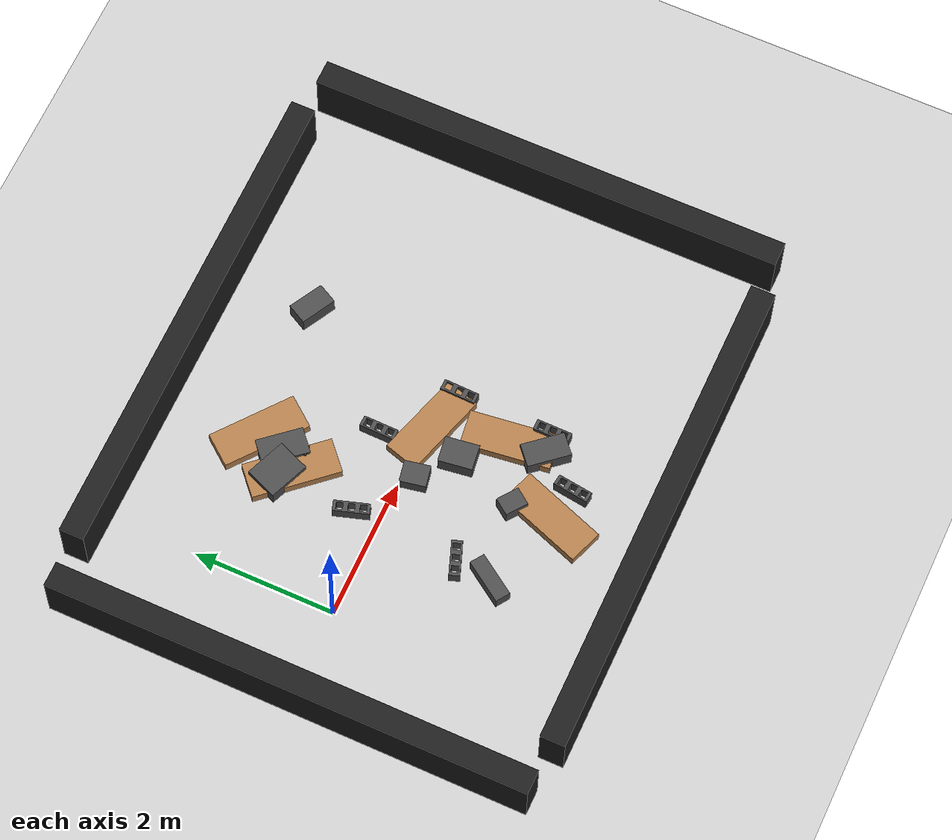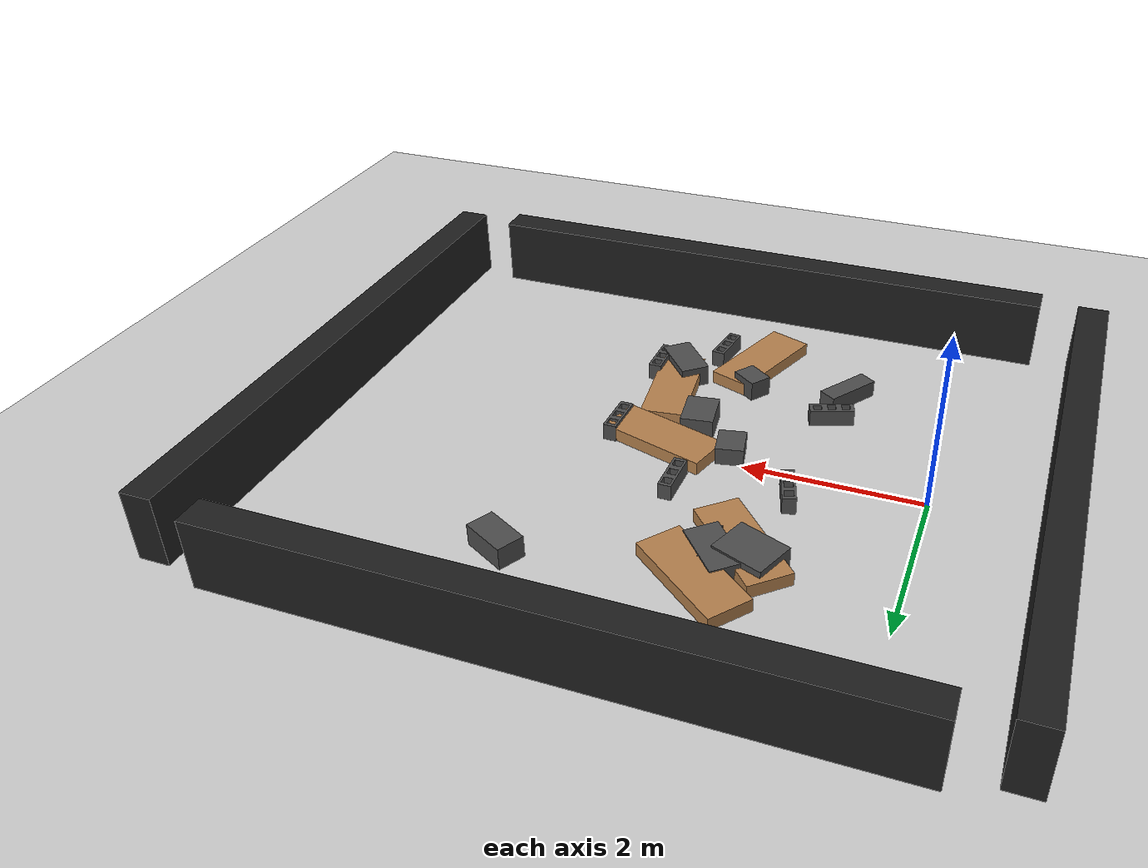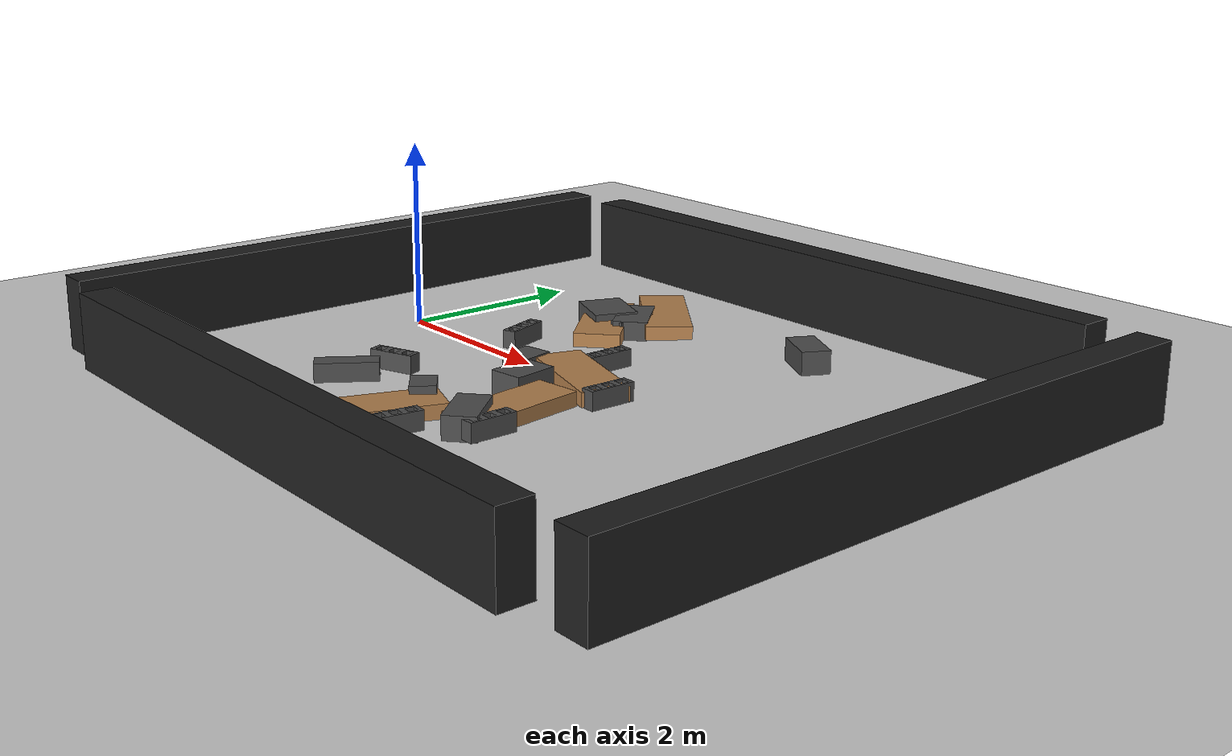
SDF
<sdf version="1.6">
 <world name="default">
  <plugin name="xbot2_clock" filename="libxbot2_gz_clock.so"/>
  <gravity>0 0 -9.81</gravity>
  <model name="ground_plane">
   <static>1</static>
   <link name="link">
    <collision name="collision">
     <geometry><plane><normal>0 0 1</normal><size>100 100</size></plane></geometry>
     <surface><friction><ode><mu>1</mu><mu2>1</mu2></ode></friction></surface>
    </collision>
    <visual name="visual">
     <cast_shadows>0</cast_shadows>
     <geometry><plane><normal>0 0 1</normal><size>100 100</size></plane></geometry>
     <material>
      <script><uri>file://media/materials/scripts/gazebo.material</uri><name>Gazebo/Grey</name></script>
     </material>
    </visual>
   </link>
  </model>
  <light name="sun" type="directional">
   <pose>0 0 10 0 -0 0</pose>
   <diffuse>0.8 0.8 0.8 1</diffuse>
   <specular>0.2 0.2 0.2 1</specular>
   <attenuation>
    <range>1000</range>
    <constant>0.9</constant>
    <linear>0.01</linear>
    <quadratic>0.001</quadratic>
   </attenuation>
   <direction>-0.5 0.1 -0.9</direction>
  </light>
  <physics name="update_rate" default="0" type="ode">
   <real_time_update_rate>4000</real_time_update_rate>
   <max_step_size>0.00025</max_step_size>
   <max_contacts>5</max_contacts>
   <bullet>
    <solver><iters>100</iters><sor>1.55</sor><type>sequential_impulse</type></solver>
    <constraints>
     <contact_surface_layer>0.2</contact_surface_layer>
     <cfm>0.005</cfm>
     <erp>0.2</erp>
     <split_impulse>1</split_impulse>
     <split_impulse_penetration_threshold>-0.01</split_impulse_penetration_threshold>
    </constraints>
   </bullet>
   <ode>
    <solver>
     <iters>50</iters>
     <sor>1.2</sor>
     <type>quick</type>
     <use_dynamic_moi_rescaling>0</use_dynamic_moi_rescaling>
    </solver>
    <constraints>
     <contact_surface_layer>0.0002</contact_surface_layer>
     <contact_max_correcting_vel>500</contact_max_correcting_vel>
     <cfm>1e-06</cfm>
     <erp>0.3</erp>
    </constraints>
   </ode>
   <real_time_factor>1</real_time_factor>
  </physics>
  <magnetic_field>6e-06 2.3e-05 -4.2e-05</magnetic_field>
  <atmosphere type="adiabatic"/>
  <scene><ambient>0.4 0.4 0.4 1</ambient><background>0.7 0.7 0.7 1</background><shadows>1</shadows></scene>
  <audio><device>default</device></audio>
  <spherical_coordinates>
   <surface_model>EARTH_WGS84</surface_model>
   <latitude_deg>0</latitude_deg>
   <longitude_deg>0</longitude_deg>
   <elevation>0</elevation>
   <heading_deg>0</heading_deg>
  </spherical_coordinates>
  <model name="brick_0">
   <pose>2.595763 0.546342 0.074062 0.000000 0.000000 -1.586708</pose>
   <link name="link">
    <inertial>
     <mass>15.0</mass>
     <inertia>
      <ixx>0.07565625</ixx>
      <ixy>0.0</ixy>
      <ixz>0.0</ixz>
      <iyy>0.340625</iyy>
      <iyz>0.0</iyz>
      <izz>0.33125</izz>
     </inertia>
    </inertial>
    <collision name="collision">
     <geometry><mesh><uri>file://../config/meshes/Brick/Brick.dae</uri></mesh></geometry>
     <max_contacts>100</max_contacts>
     <surface>
      <friction>
       <ode><mu>0.62</mu><mu2>0.6</mu2></ode>
       <torsional><coefficient>1.0</coefficient></torsional>
      </friction>
     </surface>
    </collision>
    <visual name="visual">
     <geometry><mesh><uri>file://../config/meshes/Brick/Brick.dae</uri></mesh></geometry>
     <material>
      <ambient>0.3 0.3 0.3 1</ambient>
      <diffuse>0.3 0.3 0.3 1</diffuse>
      <specular>0 0 0 0</specular>
      <emissive>0 0 0 1</emissive>
     </material>
    </visual>
   </link>
  </model>
  <model name="woodplat1_1">
   <pose>1.886826 1.970879 0.116685 0.000000 0.000000 -0.665823</pose>
   <link name="link">
    <inertial>
     <mass>10.0</mass>
     <inertia><ixx>1.6</ixx><ixy>0.0</ixy><ixz>0.0</ixz><iyy>1.6</iyy><iyz>0.0</iyz><izz>1.6</izz></inertia>
    </inertial>
    <collision name="collision">
     <geometry><mesh><uri>file://../config/meshes/WoodenPlatform1/WoodPlat1.dae</uri></mesh></geometry>
     <max_contacts>100</max_contacts>
     <surface>
      <friction>
       <ode><mu>0.62</mu><mu2>0.6</mu2></ode>
       <torsional><coefficient>1.0</coefficient></torsional>
      </friction>
     </surface>
    </collision>
    <visual name="visual">
     <geometry><mesh><uri>file://../config/meshes/WoodenPlatform1/WoodPlat1.dae</uri></mesh></geometry>
     <material>
      <script><name>Gazebo/Wood</name><uri>file://media/materials/scripts/gazebo.material</uri></script>
     </material>
    </visual>
   </link>
  </model>
  <model name="woodplat1_2">
   <pose>2.383096 -2.051301 0.072113 0.000000 0.000000 -1.918932</pose>
   <link name="link">
    <inertial>
     <mass>10.0</mass>
     <inertia><ixx>1.6</ixx><ixy>0.0</ixy><ixz>0.0</ixz><iyy>1.6</iyy><iyz>0.0</iyz><izz>1.6</izz></inertia>
    </inertial>
    <collision name="collision">
     <geometry><mesh><uri>file://../config/meshes/WoodenPlatform1/WoodPlat1.dae</uri></mesh></geometry>
     <max_contacts>100</max_contacts>
     <surface>
      <friction>
       <ode><mu>0.62</mu><mu2>0.6</mu2></ode>
       <torsional><coefficient>1.0</coefficient></torsional>
      </friction>
     </surface>
    </collision>
    <visual name="visual">
     <geometry><mesh><uri>file://../config/meshes/WoodenPlatform1/WoodPlat1.dae</uri></mesh></geometry>
     <material>
      <script><name>Gazebo/Wood</name><uri>file://media/materials/scripts/gazebo.material</uri></script>
     </material>
    </visual>
   </link>
  </model>
  <model name="box_3">
   <pose>1.461587 1.503591 0.113923 0.000000 0.000000 2.764412</pose>
   <link name="link">
    <inertial>
     <mass>1000.000000</mass>
     <inertia>
      <ixx>166.700000</ixx>
      <ixy>0.000000</ixy>
      <ixz>0.000000</ixz>
      <iyy>166.700000</iyy>
      <iyz>0.000000</iyz>
      <izz>166.700000</izz>
     </inertia>
    </inertial>
    <collision name="collision">
     <geometry><box><size>0.598994 0.476951 0.227846</size></box></geometry>
     <surface>
      <friction>
       <ode><mu>0.62</mu><mu2>0.6</mu2></ode>
       <torsional><coefficient>1.0</coefficient></torsional>
      </friction>
     </surface>
    </collision>
    <visual name="visual">
     <geometry><box><size>0.598994 0.476951 0.227846</size></box></geometry>
     <material>
      <script><name>Gazebo/DarkGrey</name><uri>file://media/materials/scripts/gazebo.material</uri></script>
     </material>
    </visual>
   </link>
  </model>
  <model name="brick_4">
   <pose>3.509654 -0.216176 0.121640 0.000000 0.000000 1.544026</pose>
   <link name="link">
    <inertial>
     <mass>15.0</mass>
     <inertia>
      <ixx>0.07565625</ixx>
      <ixy>0.0</ixy>
      <ixz>0.0</ixz>
      <iyy>0.340625</iyy>
      <iyz>0.0</iyz>
      <izz>0.33125</izz>
     </inertia>
    </inertial>
    <collision name="collision">
     <geometry><mesh><uri>file://../config/meshes/Brick/Brick.dae</uri></mesh></geometry>
     <max_contacts>100</max_contacts>
     <surface>
      <friction>
       <ode><mu>0.62</mu><mu2>0.6</mu2></ode>
       <torsional><coefficient>1.0</coefficient></torsional>
      </friction>
     </surface>
    </collision>
    <visual name="visual">
     <geometry><mesh><uri>file://../config/meshes/Brick/Brick.dae</uri></mesh></geometry>
     <material>
      <ambient>0.3 0.3 0.3 1</ambient>
      <diffuse>0.3 0.3 0.3 1</diffuse>
      <specular>0 0 0 0</specular>
      <emissive>0 0 0 1</emissive>
     </material>
    </visual>
   </link>
  </model>
  <model name="brick_5">
   <pose>2.849641 -2.155863 0.100444 0.000000 0.000000 -1.705451</pose>
   <link name="link">
    <inertial>
     <mass>15.0</mass>
     <inertia>
      <ixx>0.07565625</ixx>
      <ixy>0.0</ixy>
      <ixz>0.0</ixz>
      <iyy>0.340625</iyy>
      <iyz>0.0</iyz>
      <izz>0.33125</izz>
     </inertia>
    </inertial>
    <collision name="collision">
     <geometry><mesh><uri>file://../config/meshes/Brick/Brick.dae</uri></mesh></geometry>
     <max_contacts>100</max_contacts>
     <surface>
      <friction>
       <ode><mu>0.62</mu><mu2>0.6</mu2></ode>
       <torsional><coefficient>1.0</coefficient></torsional>
      </friction>
     </surface>
    </collision>
    <visual name="visual">
     <geometry><mesh><uri>file://../config/meshes/Brick/Brick.dae</uri></mesh></geometry>
     <material>
      <ambient>0.3 0.3 0.3 1</ambient>
      <diffuse>0.3 0.3 0.3 1</diffuse>
      <specular>0 0 0 0</specular>
      <emissive>0 0 0 1</emissive>
     </material>
    </visual>
   </link>
  </model>
  <model name="woodplat1_6">
   <pose>2.924551 -0.075715 0.109161 0.000000 0.000000 -0.291513</pose>
   <link name="link">
    <inertial>
     <mass>10.0</mass>
     <inertia><ixx>1.6</ixx><ixy>0.0</ixy><ixz>0.0</ixz><iyy>1.6</iyy><iyz>0.0</iyz><izz>1.6</izz></inertia>
    </inertial>
    <collision name="collision">
     <geometry><mesh><uri>file://../config/meshes/WoodenPlatform1/WoodPlat1.dae</uri></mesh></geometry>
     <max_contacts>100</max_contacts>
     <surface>
      <friction>
       <ode><mu>0.62</mu><mu2>0.6</mu2></ode>
       <torsional><coefficient>1.0</coefficient></torsional>
      </friction>
     </surface>
    </collision>
    <visual name="visual">
     <geometry><mesh><uri>file://../config/meshes/WoodenPlatform1/WoodPlat1.dae</uri></mesh></geometry>
     <material>
      <script><name>Gazebo/Wood</name><uri>file://media/materials/scripts/gazebo.material</uri></script>
     </material>
    </visual>
   </link>
  </model>
  <model name="brick_7">
   <pose>1.388282 0.386350 0.104509 0.000000 0.000000 1.875250</pose>
   <link name="link">
    <inertial>
     <mass>15.0</mass>
     <inertia>
      <ixx>0.07565625</ixx>
      <ixy>0.0</ixy>
      <ixz>0.0</ixz>
      <iyy>0.340625</iyy>
      <iyz>0.0</iyz>
      <izz>0.33125</izz>
     </inertia>
    </inertial>
    <collision name="collision">
     <geometry><mesh><uri>file://../config/meshes/Brick/Brick.dae</uri></mesh></geometry>
     <max_contacts>100</max_contacts>
     <surface>
      <friction>
       <ode><mu>0.62</mu><mu2>0.6</mu2></ode>
       <torsional><coefficient>1.0</coefficient></torsional>
      </friction>
     </surface>
    </collision>
    <visual name="visual">
     <geometry><mesh><uri>file://../config/meshes/Brick/Brick.dae</uri></mesh></geometry>
     <material>
      <ambient>0.3 0.3 0.3 1</ambient>
      <diffuse>0.3 0.3 0.3 1</diffuse>
      <specular>0 0 0 0</specular>
      <emissive>0 0 0 1</emissive>
     </material>
    </visual>
   </link>
  </model>
  <model name="box_8">
   <pose>3.861421 2.129241 0.124283 0.000000 0.000000 -0.490341</pose>
   <link name="link">
    <inertial>
     <mass>1000.000000</mass>
     <inertia>
      <ixx>166.700000</ixx>
      <ixy>0.000000</ixy>
      <ixz>0.000000</ixz>
      <iyy>166.700000</iyy>
      <iyz>0.000000</iyz>
      <izz>166.700000</izz>
     </inertia>
    </inertial>
    <collision name="collision">
     <geometry><box><size>0.522588 0.304037 0.248566</size></box></geometry>
     <surface>
      <friction>
       <ode><mu>0.62</mu><mu2>0.6</mu2></ode>
       <torsional><coefficient>1.0</coefficient></torsional>
      </friction>
     </surface>
    </collision>
    <visual name="visual">
     <geometry><box><size>0.522588 0.304037 0.248566</size></box></geometry>
     <material>
      <script><name>Gazebo/DarkGrey</name><uri>file://media/materials/scripts/gazebo.material</uri></script>
     </material>
    </visual>
   </link>
  </model>
  <model name="brick_9">
   <pose>1.867996 1.509420 0.097014 0.000000 0.000000 -1.464290</pose>
   <link name="link">
    <inertial>
     <mass>15.0</mass>
     <inertia>
      <ixx>0.07565625</ixx>
      <ixy>0.0</ixy>
      <ixz>0.0</ixz>
      <iyy>0.340625</iyy>
      <iyz>0.0</iyz>
      <izz>0.33125</izz>
     </inertia>
    </inertial>
    <collision name="collision">
     <geometry><mesh><uri>file://../config/meshes/Brick/Brick.dae</uri></mesh></geometry>
     <max_contacts>100</max_contacts>
     <surface>
      <friction>
       <ode><mu>0.62</mu><mu2>0.6</mu2></ode>
       <torsional><coefficient>1.0</coefficient></torsional>
      </friction>
     </surface>
    </collision>
    <visual name="visual">
     <geometry><mesh><uri>file://../config/meshes/Brick/Brick.dae</uri></mesh></geometry>
     <material>
      <ambient>0.3 0.3 0.3 1</ambient>
      <diffuse>0.3 0.3 0.3 1</diffuse>
      <specular>0 0 0 0</specular>
      <emissive>0 0 0 1</emissive>
     </material>
    </visual>
   </link>
  </model>
  <model name="brick_10">
   <pose>3.489220 -1.582811 0.122999 0.000000 0.000000 1.563047</pose>
   <link name="link">
    <inertial>
     <mass>15.0</mass>
     <inertia>
      <ixx>0.07565625</ixx>
      <ixy>0.0</ixy>
      <ixz>0.0</ixz>
      <iyy>0.340625</iyy>
      <iyz>0.0</iyz>
      <izz>0.33125</izz>
     </inertia>
    </inertial>
    <collision name="collision">
     <geometry><mesh><uri>file://../config/meshes/Brick/Brick.dae</uri></mesh></geometry>
     <max_contacts>100</max_contacts>
     <surface>
      <friction>
       <ode><mu>0.62</mu><mu2>0.6</mu2></ode>
       <torsional><coefficient>1.0</coefficient></torsional>
      </friction>
     </surface>
    </collision>
    <visual name="visual">
     <geometry><mesh><uri>file://../config/meshes/Brick/Brick.dae</uri></mesh></geometry>
     <material>
      <ambient>0.3 0.3 0.3 1</ambient>
      <diffuse>0.3 0.3 0.3 1</diffuse>
      <specular>0 0 0 0</specular>
      <emissive>0 0 0 1</emissive>
     </material>
    </visual>
   </link>
  </model>
  <model name="woodplat1_11">
   <pose>3.169701 -1.107867 0.086231 0.000000 0.000000 -1.448014</pose>
   <link name="link">
    <inertial>
     <mass>10.0</mass>
     <inertia><ixx>1.6</ixx><ixy>0.0</ixy><ixz>0.0</ixz><iyy>1.6</iyy><iyz>0.0</iyz><izz>1.6</izz></inertia>
    </inertial>
    <collision name="collision">
     <geometry><mesh><uri>file://../config/meshes/WoodenPlatform1/WoodPlat1.dae</uri></mesh></geometry>
     <max_contacts>100</max_contacts>
     <surface>
      <friction>
       <ode><mu>0.62</mu><mu2>0.6</mu2></ode>
       <torsional><coefficient>1.0</coefficient></torsional>
      </friction>
     </surface>
    </collision>
    <visual name="visual">
     <geometry><mesh><uri>file://../config/meshes/WoodenPlatform1/WoodPlat1.dae</uri></mesh></geometry>
     <material>
      <script><name>Gazebo/Wood</name><uri>file://media/materials/scripts/gazebo.material</uri></script>
     </material>
    </visual>
   </link>
  </model>
  <model name="brick_12">
   <pose>1.298614 -1.161532 0.109445 0.000000 0.000000 0.348459</pose>
   <link name="link">
    <inertial>
     <mass>15.0</mass>
     <inertia>
      <ixx>0.07565625</ixx>
      <ixy>0.0</ixy>
      <ixz>0.0</ixz>
      <iyy>0.340625</iyy>
      <iyz>0.0</iyz>
      <izz>0.33125</izz>
     </inertia>
    </inertial>
    <collision name="collision">
     <geometry><mesh><uri>file://../config/meshes/Brick/Brick.dae</uri></mesh></geometry>
     <max_contacts>100</max_contacts>
     <surface>
      <friction>
       <ode><mu>0.62</mu><mu2>0.6</mu2></ode>
       <torsional><coefficient>1.0</coefficient></torsional>
      </friction>
     </surface>
    </collision>
    <visual name="visual">
     <geometry><mesh><uri>file://../config/meshes/Brick/Brick.dae</uri></mesh></geometry>
     <material>
      <ambient>0.3 0.3 0.3 1</ambient>
      <diffuse>0.3 0.3 0.3 1</diffuse>
      <specular>0 0 0 0</specular>
      <emissive>0 0 0 1</emissive>
     </material>
    </visual>
   </link>
  </model>
  <model name="box_13">
   <pose>1.231412 -1.681168 0.098610 0.000000 0.000000 -2.164572</pose>
   <link name="link">
    <inertial>
     <mass>1000.000000</mass>
     <inertia>
      <ixx>166.700000</ixx>
      <ixy>0.000000</ixy>
      <ixz>0.000000</ixz>
      <iyy>166.700000</iyy>
      <iyz>0.000000</iyz>
      <izz>166.700000</izz>
     </inertia>
    </inertial>
    <collision name="collision">
     <geometry><box><size>0.645895 0.217050 0.197220</size></box></geometry>
     <surface>
      <friction>
       <ode><mu>0.62</mu><mu2>0.6</mu2></ode>
       <torsional><coefficient>1.0</coefficient></torsional>
      </friction>
     </surface>
    </collision>
    <visual name="visual">
     <geometry><box><size>0.645895 0.217050 0.197220</size></box></geometry>
     <material>
      <script><name>Gazebo/DarkGrey</name><uri>file://media/materials/scripts/gazebo.material</uri></script>
     </material>
    </visual>
   </link>
  </model>
  <model name="box_14">
   <pose>2.669137 -0.584659 0.123578 0.000000 0.000000 -3.005453</pose>
   <link name="link">
    <inertial>
     <mass>1000.000000</mass>
     <inertia>
      <ixx>166.700000</ixx>
      <ixy>0.000000</ixy>
      <ixz>0.000000</ixz>
      <iyy>166.700000</iyy>
      <iyz>0.000000</iyz>
      <izz>166.700000</izz>
     </inertia>
    </inertial>
    <collision name="collision">
     <geometry><box><size>0.367836 0.477565 0.247155</size></box></geometry>
     <surface>
      <friction>
       <ode><mu>0.62</mu><mu2>0.6</mu2></ode>
       <torsional><coefficient>1.0</coefficient></torsional>
      </friction>
     </surface>
    </collision>
    <visual name="visual">
     <geometry><box><size>0.367836 0.477565 0.247155</size></box></geometry>
     <material>
      <script><name>Gazebo/DarkGrey</name><uri>file://media/materials/scripts/gazebo.material</uri></script>
     </material>
    </visual>
   </link>
  </model>
  <model name="box_15">
   <pose>2.333124 -1.508346 0.114601 0.000000 0.000000 -2.203603</pose>
   <link name="link">
    <inertial>
     <mass>1000.000000</mass>
     <inertia>
      <ixx>166.700000</ixx>
      <ixy>0.000000</ixy>
      <ixz>0.000000</ixz>
      <iyy>166.700000</iyy>
      <iyz>0.000000</iyz>
      <izz>166.700000</izz>
     </inertia>
    </inertial>
    <collision name="collision">
     <geometry><box><size>0.261763 0.329092 0.229201</size></box></geometry>
     <surface>
      <friction>
       <ode><mu>0.62</mu><mu2>0.6</mu2></ode>
       <torsional><coefficient>1.0</coefficient></torsional>
      </friction>
     </surface>
    </collision>
    <visual name="visual">
     <geometry><box><size>0.261763 0.329092 0.229201</size></box></geometry>
     <material>
      <script><name>Gazebo/DarkGrey</name><uri>file://media/materials/scripts/gazebo.material</uri></script>
     </material>
    </visual>
   </link>
  </model>
  <model name="box_16">
   <pose>2.177778 -0.173504 0.099899 0.000000 0.000000 0.188700</pose>
   <link name="link">
    <inertial>
     <mass>1000.000000</mass>
     <inertia>
      <ixx>166.700000</ixx>
      <ixy>0.000000</ixy>
      <ixz>0.000000</ixz>
      <iyy>166.700000</iyy>
      <iyz>0.000000</iyz>
      <izz>166.700000</izz>
     </inertia>
    </inertial>
    <collision name="collision">
     <geometry><box><size>0.311121 0.367212 0.199797</size></box></geometry>
     <surface>
      <friction>
       <ode><mu>0.62</mu><mu2>0.6</mu2></ode>
       <torsional><coefficient>1.0</coefficient></torsional>
      </friction>
     </surface>
    </collision>
    <visual name="visual">
     <geometry><box><size>0.311121 0.367212 0.199797</size></box></geometry>
     <material>
      <script><name>Gazebo/DarkGrey</name><uri>file://media/materials/scripts/gazebo.material</uri></script>
     </material>
    </visual>
   </link>
  </model>
  <model name="box_17">
   <pose>3.197158 -1.614101 0.121842 0.000000 0.000000 -2.429475</pose>
   <link name="link">
    <inertial>
     <mass>1000.000000</mass>
     <inertia>
      <ixx>166.700000</ixx>
      <ixy>0.000000</ixy>
      <ixz>0.000000</ixz>
      <iyy>166.700000</iyy>
      <iyz>0.000000</iyz>
      <izz>166.700000</izz>
     </inertia>
    </inertial>
    <collision name="collision">
     <geometry><box><size>0.333945 0.615730 0.243683</size></box></geometry>
     <surface>
      <friction>
       <ode><mu>0.62</mu><mu2>0.6</mu2></ode>
       <torsional><coefficient>1.0</coefficient></torsional>
      </friction>
     </surface>
    </collision>
    <visual name="visual">
     <geometry><box><size>0.333945 0.615730 0.243683</size></box></geometry>
     <material>
      <script><name>Gazebo/DarkGrey</name><uri>file://media/materials/scripts/gazebo.material</uri></script>
     </material>
    </visual>
   </link>
  </model>
  <model name="woodplat1_18">
   <pose>1.590424 1.351391 0.079361 0.000000 0.000000 -0.837363</pose>
   <link name="link">
    <inertial>
     <mass>10.0</mass>
     <inertia><ixx>1.6</ixx><ixy>0.0</ixy><ixz>0.0</ixz><iyy>1.6</iyy><iyz>0.0</iyz><izz>1.6</izz></inertia>
    </inertial>
    <collision name="collision">
     <geometry><mesh><uri>file://../config/meshes/WoodenPlatform1/WoodPlat1.dae</uri></mesh></geometry>
     <max_contacts>100</max_contacts>
     <surface>
      <friction>
       <ode><mu>0.62</mu><mu2>0.6</mu2></ode>
       <torsional><coefficient>1.0</coefficient></torsional>
      </friction>
     </surface>
    </collision>
    <visual name="visual">
     <geometry><mesh><uri>file://../config/meshes/WoodenPlatform1/WoodPlat1.dae</uri></mesh></geometry>
     <material>
      <script><name>Gazebo/Wood</name><uri>file://media/materials/scripts/gazebo.material</uri></script>
     </material>
    </visual>
   </link>
  </model>
  <model name="box_19">
   <pose>1.804238 1.588386 0.103413 0.000000 0.000000 -0.853646</pose>
   <link name="link">
    <inertial>
     <mass>1000.000000</mass>
     <inertia>
      <ixx>166.700000</ixx>
      <ixy>0.000000</ixy>
      <ixz>0.000000</ixz>
      <iyy>166.700000</iyy>
      <iyz>0.000000</iyz>
      <izz>166.700000</izz>
     </inertia>
    </inertial>
    <collision name="collision">
     <geometry><box><size>0.661702 0.375254 0.206825</size></box></geometry>
     <surface>
      <friction>
       <ode><mu>0.62</mu><mu2>0.6</mu2></ode>
       <torsional><coefficient>1.0</coefficient></torsional>
      </friction>
     </surface>
    </collision>
    <visual name="visual">
     <geometry><box><size>0.661702 0.375254 0.206825</size></box></geometry>
     <material>
      <script><name>Gazebo/DarkGrey</name><uri>file://media/materials/scripts/gazebo.material</uri></script>
     </material>
    </visual>
   </link>
  </model>
  <model name="wall_0">
   <pose>-1.300000 0.000000 0.4 0 0 0.000000</pose>
   <link name="link">
    <inertial>
     <mass>10000.0</mass>
     <inertia><ixx>166.7</ixx><ixy>0</ixy><ixz>0</ixz><iyy>166.7</iyy><iyz>0</iyz><izz>166.7</izz></inertia>
    </inertial>
    <collision name="collision">
     <geometry><box><size>0.350000 6.800000 0.8</size></box></geometry>
     <surface>
      <friction>
       <ode><mu>0.62</mu><mu2>0.6</mu2></ode>
       <torsional><coefficient>1.0</coefficient></torsional>
      </friction>
     </surface>
    </collision>
    <visual name="visual">
     <geometry><box><size>0.350000 6.800000 0.8</size></box></geometry>
     <material>
      <script><name>Gazebo/FlatBlack</name><uri>file://media/materials/scripts/gazebo.material</uri></script>
     </material>
    </visual>
   </link>
  </model>
  <model name="wall_1">
   <pose>6.900000 0.000000 0.4 0 0 0.000000</pose>
   <link name="link">
    <inertial>
     <mass>10000.0</mass>
     <inertia><ixx>166.7</ixx><ixy>0</ixy><ixz>0</ixz><iyy>166.7</iyy><iyz>0</iyz><izz>166.7</izz></inertia>
    </inertial>
    <collision name="collision">
     <geometry><box><size>0.350000 6.800000 0.8</size></box></geometry>
     <surface>
      <friction>
       <ode><mu>0.62</mu><mu2>0.6</mu2></ode>
       <torsional><coefficient>1.0</coefficient></torsional>
      </friction>
     </surface>
    </collision>
    <visual name="visual">
     <geometry><box><size>0.350000 6.800000 0.8</size></box></geometry>
     <material>
      <script><name>Gazebo/FlatBlack</name><uri>file://media/materials/scripts/gazebo.material</uri></script>
     </material>
    </visual>
   </link>
  </model>
  <model name="wall_2">
   <pose>2.800000 -3.400000 0.4 0 0 0.000000</pose>
   <link name="link">
    <inertial>
     <mass>10000.0</mass>
     <inertia><ixx>166.7</ixx><ixy>0</ixy><ixz>0</ixz><iyy>166.7</iyy><iyz>0</iyz><izz>166.7</izz></inertia>
    </inertial>
    <collision name="collision">
     <geometry><box><size>7.000000 0.350000 0.8</size></box></geometry>
     <surface>
      <friction>
       <ode><mu>0.62</mu><mu2>0.6</mu2></ode>
       <torsional><coefficient>1.0</coefficient></torsional>
      </friction>
     </surface>
    </collision>
    <visual name="visual">
     <geometry><box><size>7.000000 0.350000 0.8</size></box></geometry>
     <material>
      <script><name>Gazebo/FlatBlack</name><uri>file://media/materials/scripts/gazebo.material</uri></script>
     </material>
    </visual>
   </link>
  </model>
  <model name="wall_3">
   <pose>2.800000 3.400000 0.4 0 0 0.000000</pose>
   <link name="link">
    <inertial>
     <mass>10000.0</mass>
     <inertia><ixx>166.7</ixx><ixy>0</ixy><ixz>0</ixz><iyy>166.7</iyy><iyz>0</iyz><izz>166.7</izz></inertia>
    </inertial>
    <collision name="collision">
     <geometry><box><size>7.000000 0.350000 0.8</size></box></geometry>
     <surface>
      <friction>
       <ode><mu>0.62</mu><mu2>0.6</mu2></ode>
       <torsional><coefficient>1.0</coefficient></torsional>
      </friction>
     </surface>
    </collision>
    <visual name="visual">
     <geometry><box><size>7.000000 0.350000 0.8</size></box></geometry>
     <material>
      <script><name>Gazebo/FlatBlack</name><uri>file://media/materials/scripts/gazebo.material</uri></script>
     </material>
    </visual>
   </link>
  </model>
 </world>
</sdf>
